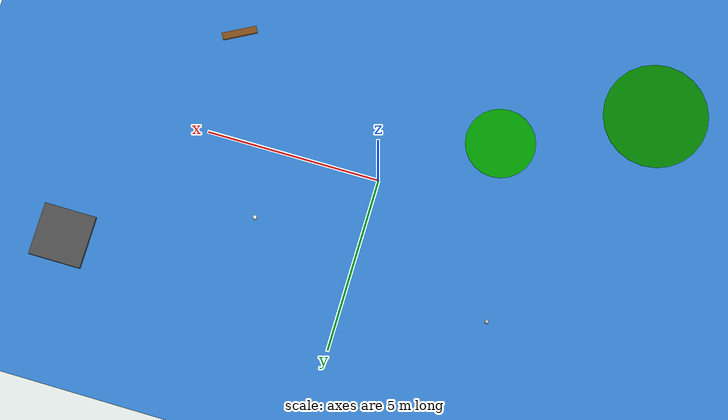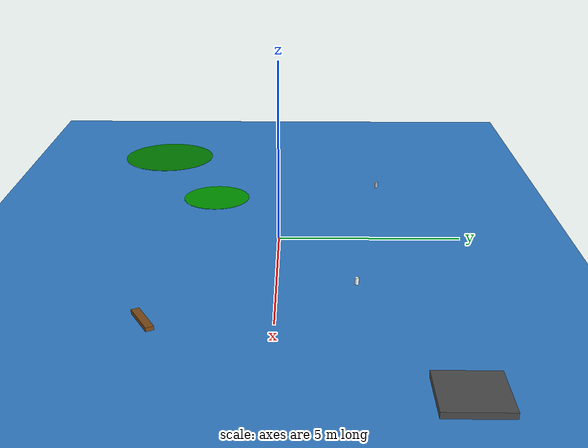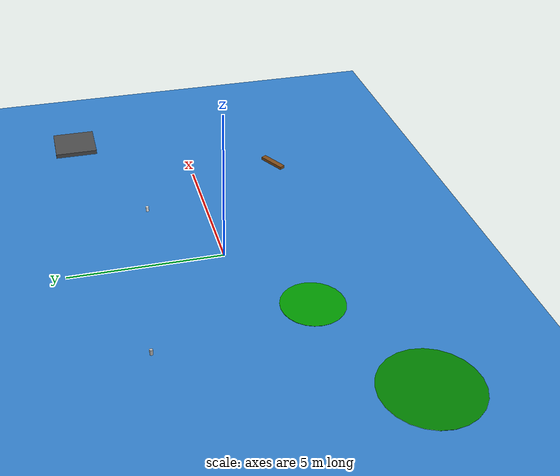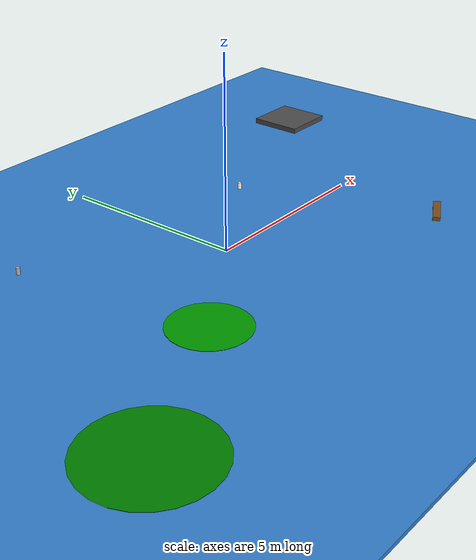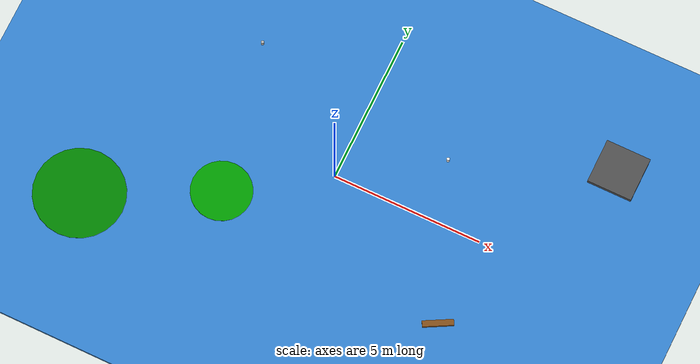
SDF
<?xml version="1.0" ?>
<sdf version="1.7">

<world name="lake_world">

  <include>
    <uri>model://sun</uri>
  </include>

  <!-- Water Surface -->
  <model name="lake_surface">

    <static>true</static>

    <link name="water">

      <visual name="water_visual">

        <geometry>
          <box>
            <size>50 50 0.1</size>
          </box>
        </geometry>

        <material>
          <ambient>0.2 0.5 0.8 1</ambient>
          <diffuse>0.2 0.5 0.8 1</diffuse>
        </material>

      </visual>

    </link>

  </model>

  <!-- Plastic Bottle 1 -->
  <model name="bottle1">
    <pose>3 2 0.1 0 0 0</pose>

    <link name="link">
      <visual name="visual">
        <geometry>
          <cylinder>
            <radius>0.05</radius>
            <length>0.25</length>
          </cylinder>
        </geometry>

        <material>
          <ambient>1 1 1 1</ambient>
          <diffuse>1 1 1 1</diffuse>
        </material>

      </visual>
    </link>
  </model>

  <!-- Plastic Bottle 2 -->
  <model name="bottle2">
    <pose>-4 3 0.1 0 0 0</pose>

    <link name="link">
      <visual name="visual">
        <geometry>
          <cylinder>
            <radius>0.05</radius>
            <length>0.25</length>
          </cylinder>
        </geometry>
      </visual>
    </link>
  </model>

  <!-- Wooden Debris -->
  <model name="wood_piece">

    <pose>5 -3 0.1 0 0 0.5</pose>

    <link name="link">

      <visual name="visual">

        <geometry>
          <box>
            <size>1 0.2 0.1</size>
          </box>
        </geometry>

        <material>
          <ambient>0.5 0.3 0.1 1</ambient>
          <diffuse>0.5 0.3 0.1 1</diffuse>
        </material>

      </visual>

    </link>

  </model>

  <!-- Algae Patch 1 -->
  <model name="algae1">

    <pose>-3 -2 0.05 0 0 0</pose>

    <link name="link">

      <visual name="visual">

        <geometry>
          <cylinder>
            <radius>1</radius>
            <length>0.02</length>
          </cylinder>
        </geometry>

        <material>
          <ambient>0 0.6 0 1</ambient>
          <diffuse>0 0.6 0 1</diffuse>
        </material>

      </visual>

    </link>

  </model>

  <!-- Algae Patch 2 -->
  <model name="algae2">

    <pose>-7 -4 0.05 0 0 0</pose>

    <link name="link">

      <visual name="visual">

        <geometry>
          <cylinder>
            <radius>1.5</radius>
            <length>0.02</length>
          </cylinder>
        </geometry>

        <material>
          <ambient>0 0.5 0 1</ambient>
          <diffuse>0 0.5 0 1</diffuse>
        </material>

      </visual>

    </link>

  </model>

  <!-- Garbage Cluster -->

  <model name="garbage_cluster">

    <pose>8 4 0.1 0 0 0</pose>

    <link name="link">

      <visual name="visual">

        <geometry>
          <box>
            <size>1.5 1.5 0.2</size>
          </box>
        </geometry>

        <material>
          <ambient>0.3 0.3 0.3 1</ambient>
          <diffuse>0.3 0.3 0.3 1</diffuse>
        </material>

      </visual>

    </link>

  </model>

</world>

</sdf>
